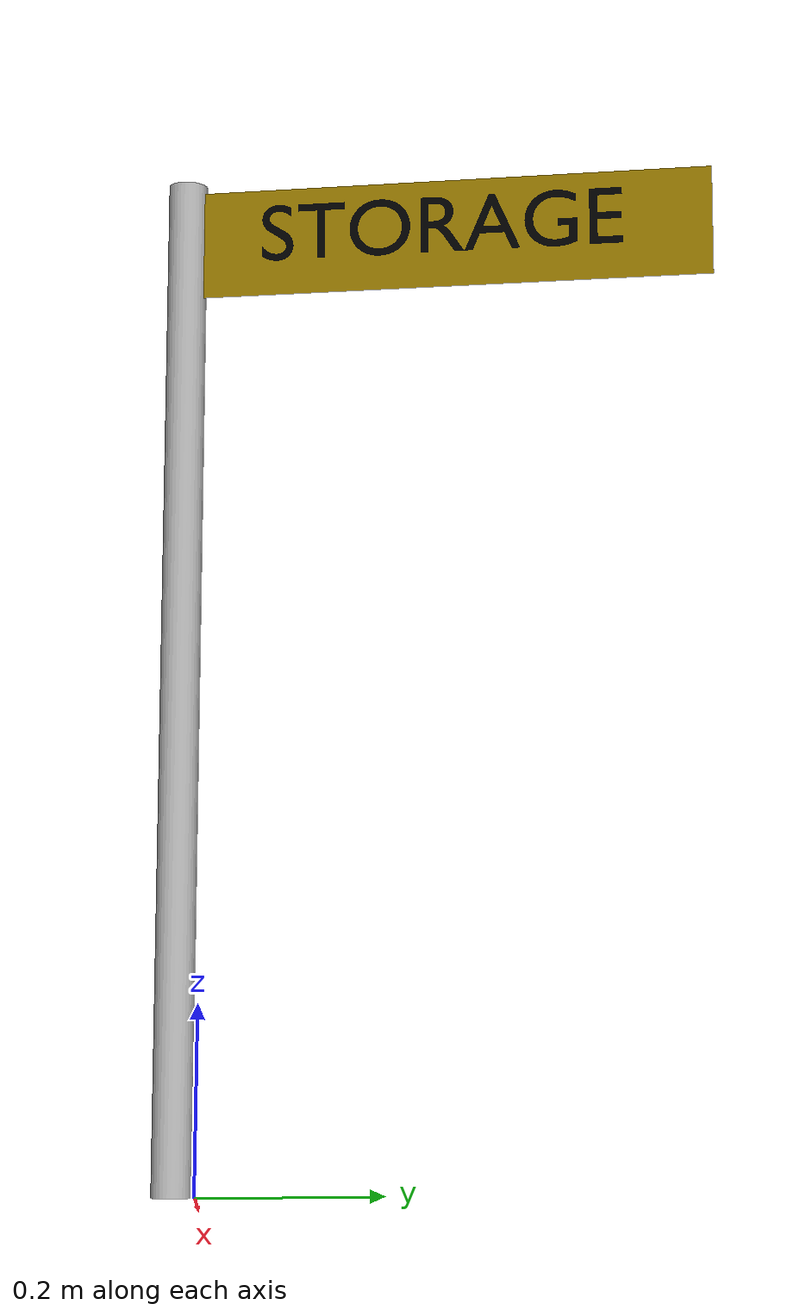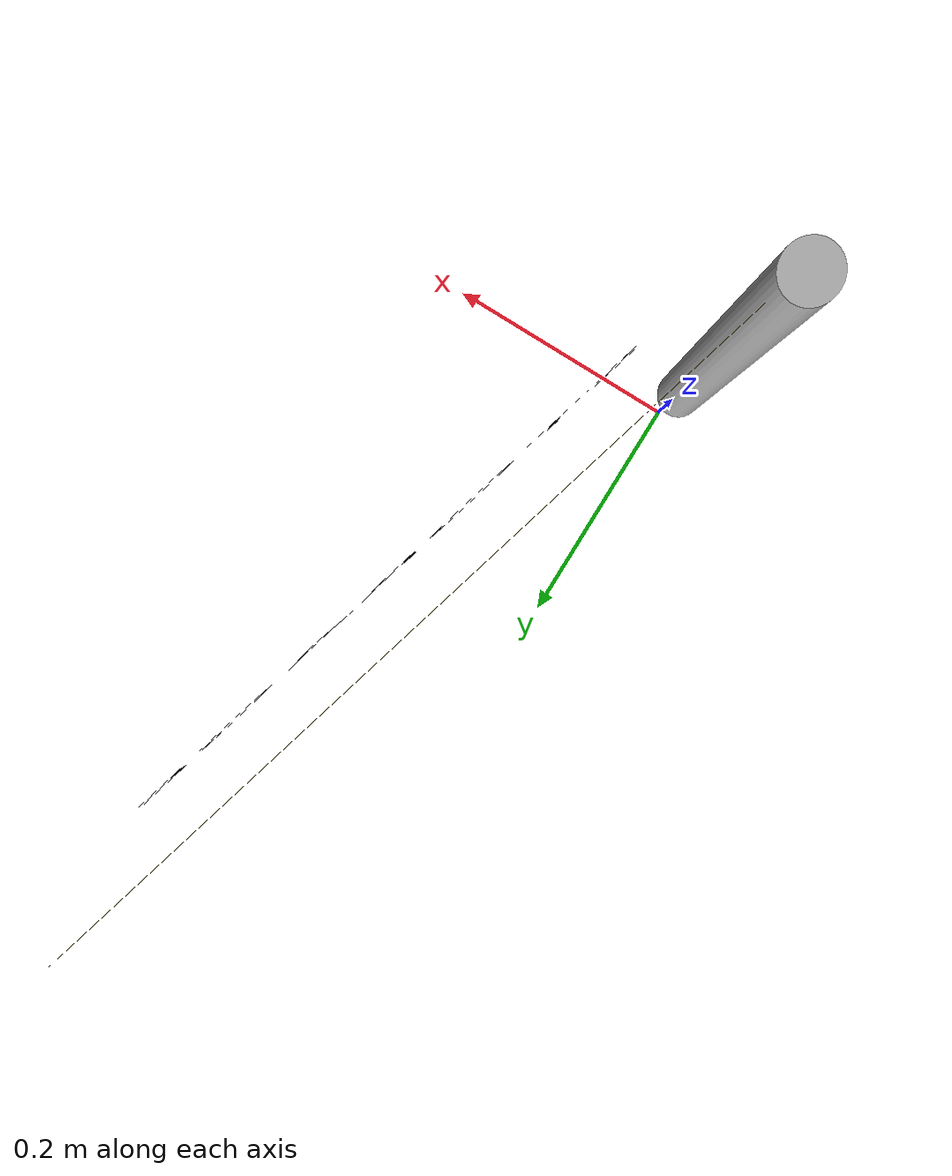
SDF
<?xml version="1.0"?>
<sdf version="1.8">
  <model name="storage_zone_decal">
    <static>true</static>
    <link name="link">
      <visual name="visual">
        <geometry>
          <mesh>
            <uri>model://storage_zone_decal/meshes/storage_sign.dae</uri>
            <scale>1.3 1.3 1.3</scale>
          </mesh>
        </geometry>
      </visual>
      <collision name="collision">
        <geometry>
          <mesh>
            <uri>model://storage_zone_decal/meshes/storage_sign.dae</uri>
          </mesh>
        </geometry>
      </collision>
    </link>
  </model>
</sdf>
